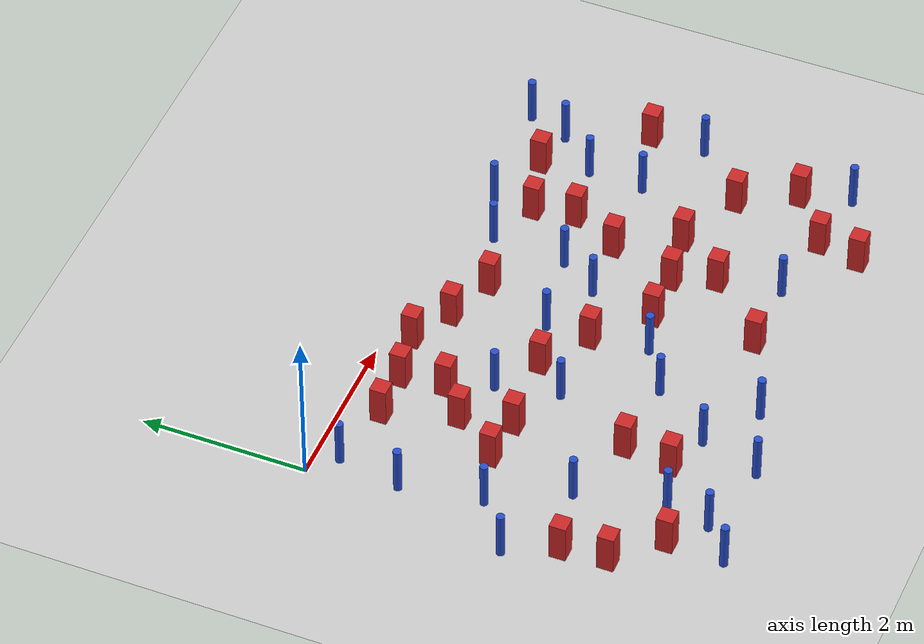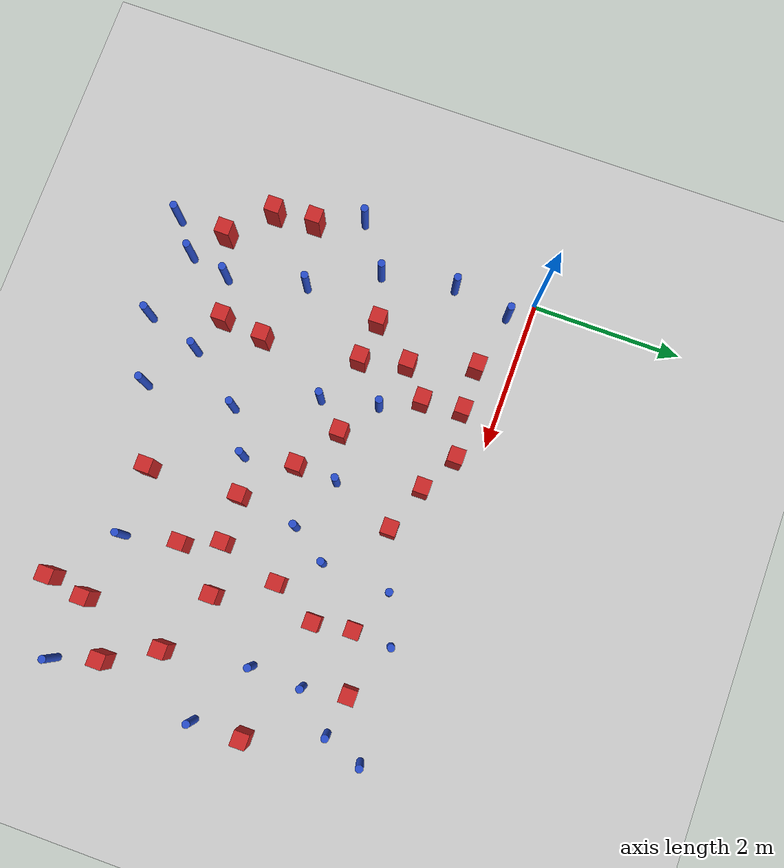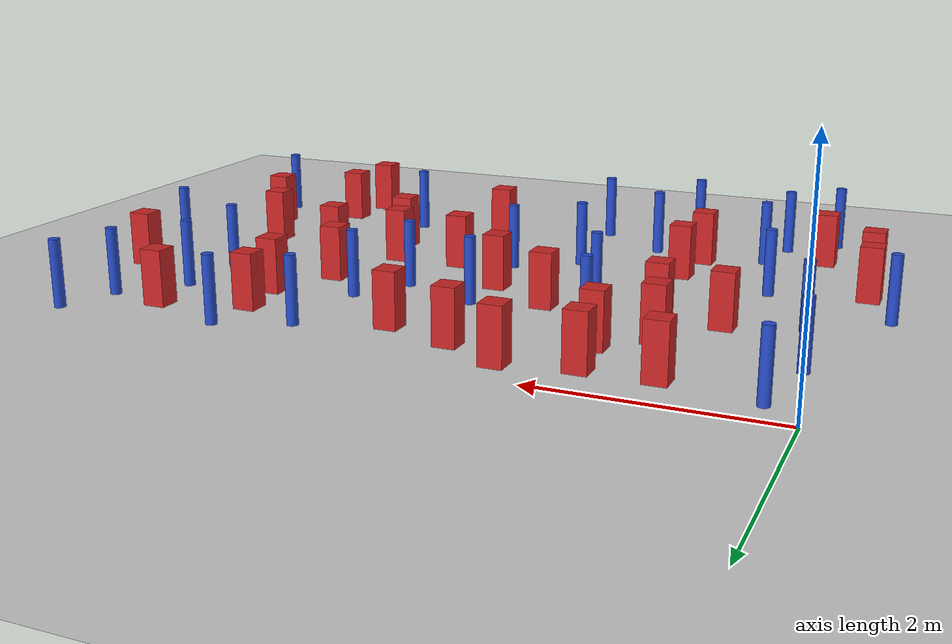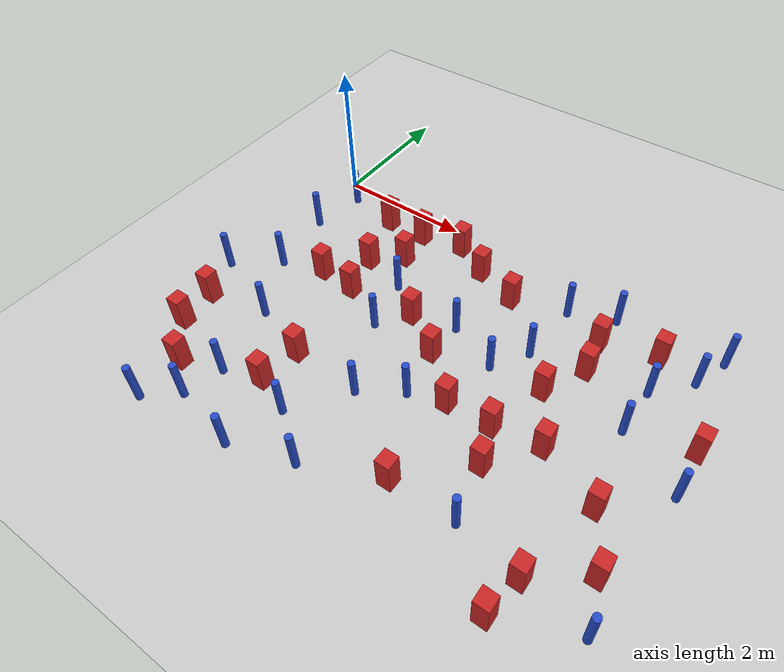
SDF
<sdf version="1.6">
 <world name="default">
  <model name="ground_plane">
   <static>1</static>
   <link name="link">
    <collision name="collision">
     <geometry><plane><normal>0 0 1</normal><size>100 100</size></plane></geometry>
     <surface><friction><ode><mu>100</mu><mu2>50</mu2></ode></friction></surface>
    </collision>
    <visual name="visual">
     <cast_shadows>0</cast_shadows>
     <geometry><plane><normal>0 0 1</normal><size>100 100</size></plane></geometry>
     <material>
      <ambient>1.0 1.0 1.0 1.0</ambient>
      <diffuse>0.8 0.8 0.8 1.0</diffuse>
      <specular>0.01 0.01 0.01 1.000000</specular>
     </material>
    </visual>
   </link>
  </model>
  <model name="pole_obstacle6">
   <static>true</static>
   <pose>1.02716749016 -3.94141374447 2.88873142074e-08 -9.905366898e-09 4.6021994899e-07 -1.20965994959e-07</pose>
   <link name="link">
    <pose>0 0 0.3 0 -0 0</pose>
    <inertial>
     <mass>1</mass>
     <inertia><ixx>0.145833</ixx><ixy>0</ixy><ixz>0</ixz><iyy>0.145833</iyy><iyz>0</iyz><izz>0.125</izz></inertia>
    </inertial>
    <collision name="collision">
     <geometry><cylinder><radius>0.05</radius><length>.6</length></cylinder></geometry>
    </collision>
    <visual name="visual">
     <geometry><cylinder><radius>0.05</radius><length>.6</length></cylinder></geometry>
     <material>
      <script><name>Gazebo/Blue</name><uri>file://media/materials/scripts/gazebo.material</uri></script>
     </material>
    </visual>
   </link>
  </model>
  <model name="square_post_obstacle7">
   <static>true</static>
   <pose>-0.0057804838044 -3.64052137641 8.22691968438e-08 7.2212513382e-06 -7.54495500217e-07 2.29674213826e-05</pose>
   <link name="link">
    <pose>0 0 0.25 0 -0 0</pose>
    <inertial>
     <mass>100</mass>
     <inertia>
      <ixx>0.166667</ixx>
      <ixy>0</ixy>
      <ixz>0</ixz>
      <iyy>0.166667</iyy>
      <iyz>0</iyz>
      <izz>0.166667</izz>
     </inertia>
    </inertial>
    <collision name="collision"><geometry><box><size>.2 .2 .5</size></box></geometry></collision>
    <visual name="visual">
     <geometry><box><size>.2 .2 .5</size></box></geometry>
     <material>
      <script><name>Gazebo/Red</name><uri>file://media/materials/scripts/gazebo.material</uri></script>
     </material>
    </visual>
   </link>
  </model>
  <model name="pole_obstacle18">
   <static>true</static>
   <pose>2.1458265055 -2.21912154027 2.88873142074e-08 -9.90536690232e-09 4.6021994898e-07 -1.20965994968e-07</pose>
   <link name="link">
    <pose>0 0 0.3 0 -0 0</pose>
    <inertial>
     <mass>1</mass>
     <inertia><ixx>0.145833</ixx><ixy>0</ixy><ixz>0</ixz><iyy>0.145833</iyy><iyz>0</iyz><izz>0.125</izz></inertia>
    </inertial>
    <collision name="collision">
     <geometry><cylinder><radius>0.05</radius><length>.6</length></cylinder></geometry>
    </collision>
    <visual name="visual">
     <geometry><cylinder><radius>0.05</radius><length>.6</length></cylinder></geometry>
     <material>
      <script><name>Gazebo/Blue</name><uri>file://media/materials/scripts/gazebo.material</uri></script>
     </material>
    </visual>
   </link>
  </model>
  <model name="square_post_obstacle15">
   <static>true</static>
   <pose>6.16638495701 -3.64058600753 8.22691968438e-08 7.2212513382e-06 -7.54495500217e-07 2.29674213826e-05</pose>
   <link name="link">
    <pose>0 0 0.25 0 -0 0</pose>
    <inertial>
     <mass>100</mass>
     <inertia>
      <ixx>0.166667</ixx>
      <ixy>0</ixy>
      <ixz>0</ixz>
      <iyy>0.166667</iyy>
      <iyz>0</iyz>
      <izz>0.166667</izz>
     </inertia>
    </inertial>
    <collision name="collision"><geometry><box><size>.2 .2 .5</size></box></geometry></collision>
    <visual name="visual">
     <geometry><box><size>.2 .2 .5</size></box></geometry>
     <material>
      <script><name>Gazebo/Red</name><uri>file://media/materials/scripts/gazebo.material</uri></script>
     </material>
    </visual>
   </link>
  </model>
  <model name="pole_obstacle21">
   <static>true</static>
   <pose>-0.311087586102 -2.49028913784 2.88873142074e-08 -9.90536689663e-09 4.60219948993e-07 -1.20965994959e-07</pose>
   <link name="link">
    <pose>0 0 0.3 0 -0 0</pose>
    <inertial>
     <mass>1</mass>
     <inertia><ixx>0.145833</ixx><ixy>0</ixy><ixz>0</ixz><iyy>0.145833</iyy><iyz>0</iyz><izz>0.125</izz></inertia>
    </inertial>
    <collision name="collision">
     <geometry><cylinder><radius>0.05</radius><length>.6</length></cylinder></geometry>
    </collision>
    <visual name="visual">
     <geometry><cylinder><radius>0.05</radius><length>.6</length></cylinder></geometry>
     <material>
      <script><name>Gazebo/Blue</name><uri>file://media/materials/scripts/gazebo.material</uri></script>
     </material>
    </visual>
   </link>
  </model>
  <model name="square_post_obstacle18">
   <static>true</static>
   <pose>2.48463160114 -1.83322544054 8.22691968438e-08 7.2212513382e-06 -7.54495500217e-07 2.29674213826e-05</pose>
   <link name="link">
    <pose>0 0 0.25 0 -0 0</pose>
    <inertial>
     <mass>100</mass>
     <inertia>
      <ixx>0.166667</ixx>
      <ixy>0</ixy>
      <ixz>0</ixz>
      <iyy>0.166667</iyy>
      <iyz>0</iyz>
      <izz>0.166667</izz>
     </inertia>
    </inertial>
    <collision name="collision"><geometry><box><size>.2 .2 .5</size></box></geometry></collision>
    <visual name="visual">
     <geometry><box><size>.2 .2 .5</size></box></geometry>
     <material>
      <script><name>Gazebo/Red</name><uri>file://media/materials/scripts/gazebo.material</uri></script>
     </material>
    </visual>
   </link>
  </model>
  <model name="pole_obstacle25">
   <static>true</static>
   <pose>1.84519494686 -4.69415140168 2.88873142074e-08 -9.90536689852e-09 4.60219948989e-07 -1.2096599496e-07</pose>
   <link name="link">
    <pose>0 0 0.3 0 -0 0</pose>
    <inertial>
     <mass>1</mass>
     <inertia><ixx>0.145833</ixx><ixy>0</ixy><ixz>0</ixz><iyy>0.145833</iyy><iyz>0</iyz><izz>0.125</izz></inertia>
    </inertial>
    <collision name="collision">
     <geometry><cylinder><radius>0.05</radius><length>.6</length></cylinder></geometry>
    </collision>
    <visual name="visual">
     <geometry><cylinder><radius>0.05</radius><length>.6</length></cylinder></geometry>
     <material>
      <script><name>Gazebo/Blue</name><uri>file://media/materials/scripts/gazebo.material</uri></script>
     </material>
    </visual>
   </link>
  </model>
  <model name="pole_obstacle29">
   <static>true</static>
   <pose>4.82160324597 -0.308632297816 2.88873142074e-08 -9.90536689981e-09 4.60219948986e-07 -1.20965994962e-07</pose>
   <link name="link">
    <pose>0 0 0.3 0 -0 0</pose>
    <inertial>
     <mass>1</mass>
     <inertia><ixx>0.145833</ixx><ixy>0</ixy><ixz>0</ixz><iyy>0.145833</iyy><iyz>0</iyz><izz>0.125</izz></inertia>
    </inertial>
    <collision name="collision">
     <geometry><cylinder><radius>0.05</radius><length>.6</length></cylinder></geometry>
    </collision>
    <visual name="visual">
     <geometry><cylinder><radius>0.05</radius><length>.6</length></cylinder></geometry>
     <material>
      <script><name>Gazebo/Blue</name><uri>file://media/materials/scripts/gazebo.material</uri></script>
     </material>
    </visual>
   </link>
  </model>
  <model name="square_post_obstacle25">
   <static>true</static>
   <pose>1.64201008194 -3.1992250627 8.22691968438e-08 7.2212513382e-06 -7.54495500217e-07 2.29674213826e-05</pose>
   <link name="link">
    <pose>0 0 0.25 0 -0 0</pose>
    <inertial>
     <mass>100</mass>
     <inertia>
      <ixx>0.166667</ixx>
      <ixy>0</ixy>
      <ixz>0</ixz>
      <iyy>0.166667</iyy>
      <iyz>0</iyz>
      <izz>0.166667</izz>
     </inertia>
    </inertial>
    <collision name="collision"><geometry><box><size>.2 .2 .5</size></box></geometry></collision>
    <visual name="visual">
     <geometry><box><size>.2 .2 .5</size></box></geometry>
     <material>
      <script><name>Gazebo/Red</name><uri>file://media/materials/scripts/gazebo.material</uri></script>
     </material>
    </visual>
   </link>
  </model>
  <model name="pole_obstacle37">
   <static>true</static>
   <pose>0.897569217199 -4.48015806461 2.88873142074e-08 -9.90536689661e-09 4.60219948993e-07 -1.20965994957e-07</pose>
   <link name="link">
    <pose>0 0 0.3 0 -0 0</pose>
    <inertial>
     <mass>1</mass>
     <inertia><ixx>0.145833</ixx><ixy>0</ixy><ixz>0</ixz><iyy>0.145833</iyy><iyz>0</iyz><izz>0.125</izz></inertia>
    </inertial>
    <collision name="collision">
     <geometry><cylinder><radius>0.05</radius><length>.6</length></cylinder></geometry>
    </collision>
    <visual name="visual">
     <geometry><cylinder><radius>0.05</radius><length>.6</length></cylinder></geometry>
     <material>
      <script><name>Gazebo/Blue</name><uri>file://media/materials/scripts/gazebo.material</uri></script>
     </material>
    </visual>
   </link>
  </model>
  <model name="pole_obstacle41">
   <static>true</static>
   <pose>0.782622849794 -2.91229569489 2.88873142074e-08 -9.90536689636e-09 4.60219948994e-07 -1.20965994958e-07</pose>
   <link name="link">
    <pose>0 0 0.3 0 -0 0</pose>
    <inertial>
     <mass>1</mass>
     <inertia><ixx>0.145833</ixx><ixy>0</ixy><ixz>0</ixz><iyy>0.145833</iyy><iyz>0</iyz><izz>0.125</izz></inertia>
    </inertial>
    <collision name="collision">
     <geometry><cylinder><radius>0.05</radius><length>.6</length></cylinder></geometry>
    </collision>
    <visual name="visual">
     <geometry><cylinder><radius>0.05</radius><length>.6</length></cylinder></geometry>
     <material>
      <script><name>Gazebo/Blue</name><uri>file://media/materials/scripts/gazebo.material</uri></script>
     </material>
    </visual>
   </link>
  </model>
  <model name="pole_obstacle42">
   <static>true</static>
   <pose>0.153689035778 -1.06275869575 2.88873142074e-08 -9.90536689569e-09 4.60219948996e-07 -1.20965994956e-07</pose>
   <link name="link">
    <pose>0 0 0.3 0 -0 0</pose>
    <inertial>
     <mass>1</mass>
     <inertia><ixx>0.145833</ixx><ixy>0</ixy><ixz>0</ixz><iyy>0.145833</iyy><iyz>0</iyz><izz>0.125</izz></inertia>
    </inertial>
    <collision name="collision">
     <geometry><cylinder><radius>0.05</radius><length>.6</length></cylinder></geometry>
    </collision>
    <visual name="visual">
     <geometry><cylinder><radius>0.05</radius><length>.6</length></cylinder></geometry>
     <material>
      <script><name>Gazebo/Blue</name><uri>file://media/materials/scripts/gazebo.material</uri></script>
     </material>
    </visual>
   </link>
  </model>
  <model name="square_post_obstacle35">
   <static>true</static>
   <pose>3.43985547992 -0.816045588412 8.22691968438e-08 7.2212513382e-06 -7.54495500217e-07 2.29674213826e-05</pose>
   <link name="link">
    <pose>0 0 0.25 0 -0 0</pose>
    <inertial>
     <mass>100</mass>
     <inertia>
      <ixx>0.166667</ixx>
      <ixy>0</ixy>
      <ixz>0</ixz>
      <iyy>0.166667</iyy>
      <iyz>0</iyz>
      <izz>0.166667</izz>
     </inertia>
    </inertial>
    <collision name="collision"><geometry><box><size>.2 .2 .5</size></box></geometry></collision>
    <visual name="visual">
     <geometry><box><size>.2 .2 .5</size></box></geometry>
     <material>
      <script><name>Gazebo/Red</name><uri>file://media/materials/scripts/gazebo.material</uri></script>
     </material>
    </visual>
   </link>
  </model>
  <model name="square_post_obstacle39">
   <static>true</static>
   <pose>3.72615181949 -3.97784280916 8.22691968438e-08 7.2212513382e-06 -7.54495500217e-07 2.29674213826e-05</pose>
   <link name="link">
    <pose>0 0 0.25 0 -0 0</pose>
    <inertial>
     <mass>100</mass>
     <inertia>
      <ixx>0.166667</ixx>
      <ixy>0</ixy>
      <ixz>0</ixz>
      <iyy>0.166667</iyy>
      <iyz>0</iyz>
      <izz>0.166667</izz>
     </inertia>
    </inertial>
    <collision name="collision"><geometry><box><size>.2 .2 .5</size></box></geometry></collision>
    <visual name="visual">
     <geometry><box><size>.2 .2 .5</size></box></geometry>
     <material>
      <script><name>Gazebo/Red</name><uri>file://media/materials/scripts/gazebo.material</uri></script>
     </material>
    </visual>
   </link>
  </model>
  <model name="pole_obstacle49">
   <static>true</static>
   <pose>0.291614957395 -0.297635269655 2.88873142074e-08 -9.90536689987e-09 4.60219948986e-07 -1.20965994962e-07</pose>
   <link name="link">
    <pose>0 0 0.3 0 -0 0</pose>
    <inertial>
     <mass>1</mass>
     <inertia><ixx>0.145833</ixx><ixy>0</ixy><ixz>0</ixz><iyy>0.145833</iyy><iyz>0</iyz><izz>0.125</izz></inertia>
    </inertial>
    <collision name="collision">
     <geometry><cylinder><radius>0.05</radius><length>.6</length></cylinder></geometry>
    </collision>
    <visual name="visual">
     <geometry><cylinder><radius>0.05</radius><length>.6</length></cylinder></geometry>
     <material>
      <script><name>Gazebo/Blue</name><uri>file://media/materials/scripts/gazebo.material</uri></script>
     </material>
    </visual>
   </link>
  </model>
  <model name="pole_obstacle53">
   <static>true</static>
   <pose>5.62609743832 -1.8604816719 2.88873142074e-08 -9.90536689445e-09 4.60219948999e-07 -1.20965994956e-07</pose>
   <link name="link">
    <pose>0 0 0.3 0 -0 0</pose>
    <inertial>
     <mass>1</mass>
     <inertia><ixx>0.145833</ixx><ixy>0</ixy><ixz>0</ixz><iyy>0.145833</iyy><iyz>0</iyz><izz>0.125</izz></inertia>
    </inertial>
    <collision name="collision">
     <geometry><cylinder><radius>0.05</radius><length>.6</length></cylinder></geometry>
    </collision>
    <visual name="visual">
     <geometry><cylinder><radius>0.05</radius><length>.6</length></cylinder></geometry>
     <material>
      <script><name>Gazebo/Blue</name><uri>file://media/materials/scripts/gazebo.material</uri></script>
     </material>
    </visual>
   </link>
  </model>
  <model name="pole_obstacle54">
   <static>true</static>
   <pose>5.65227359529 -1.18035621923 2.88873142074e-08 -9.90536689445e-09 4.60219948999e-07 -1.20965994956e-07</pose>
   <link name="link">
    <pose>0 0 0.3 0 -0 0</pose>
    <inertial>
     <mass>1</mass>
     <inertia><ixx>0.145833</ixx><ixy>0</ixy><ixz>0</ixz><iyy>0.145833</iyy><iyz>0</iyz><izz>0.125</izz></inertia>
    </inertial>
    <collision name="collision">
     <geometry><cylinder><radius>0.05</radius><length>.6</length></cylinder></geometry>
    </collision>
    <visual name="visual">
     <geometry><cylinder><radius>0.05</radius><length>.6</length></cylinder></geometry>
     <material>
      <script><name>Gazebo/Blue</name><uri>file://media/materials/scripts/gazebo.material</uri></script>
     </material>
    </visual>
   </link>
  </model>
  <model name="square_post_obstacle45">
   <static>true</static>
   <pose>4.48881305456 -3.23550049354 8.22691968438e-08 7.2212513382e-06 -7.54495500217e-07 2.29674213826e-05</pose>
   <link name="link">
    <pose>0 0 0.25 0 -0 0</pose>
    <inertial>
     <mass>100</mass>
     <inertia>
      <ixx>0.166667</ixx>
      <ixy>0</ixy>
      <ixz>0</ixz>
      <iyy>0.166667</iyy>
      <iyz>0</iyz>
      <izz>0.166667</izz>
     </inertia>
    </inertial>
    <collision name="collision"><geometry><box><size>.2 .2 .5</size></box></geometry></collision>
    <visual name="visual">
     <geometry><box><size>.2 .2 .5</size></box></geometry>
     <material>
      <script><name>Gazebo/Red</name><uri>file://media/materials/scripts/gazebo.material</uri></script>
     </material>
    </visual>
   </link>
  </model>
  <model name="square_post_obstacle46">
   <static>true</static>
   <pose>1.57374405064 -3.7740169962 8.22691968438e-08 7.2212513382e-06 -7.54495500217e-07 2.29674213826e-05</pose>
   <link name="link">
    <pose>0 0 0.25 0 -0 0</pose>
    <inertial>
     <mass>100</mass>
     <inertia>
      <ixx>0.166667</ixx>
      <ixy>0</ixy>
      <ixz>0</ixz>
      <iyy>0.166667</iyy>
      <iyz>0</iyz>
      <izz>0.166667</izz>
     </inertia>
    </inertial>
    <collision name="collision"><geometry><box><size>.2 .2 .5</size></box></geometry></collision>
    <visual name="visual">
     <geometry><box><size>.2 .2 .5</size></box></geometry>
     <material>
      <script><name>Gazebo/Red</name><uri>file://media/materials/scripts/gazebo.material</uri></script>
     </material>
    </visual>
   </link>
  </model>
  <model name="pole_obstacle72">
   <static>true</static>
   <pose>6.28156783449 -0.192312432924 2.88873142074e-08 -9.90536689378e-09 4.60219949e-07 -1.20965994955e-07</pose>
   <link name="link">
    <pose>0 0 0.3 0 -0 0</pose>
    <inertial>
     <mass>1</mass>
     <inertia><ixx>0.145833</ixx><ixy>0</ixy><ixz>0</ixz><iyy>0.145833</iyy><iyz>0</iyz><izz>0.125</izz></inertia>
    </inertial>
    <collision name="collision">
     <geometry><cylinder><radius>0.05</radius><length>.6</length></cylinder></geometry>
    </collision>
    <visual name="visual">
     <geometry><cylinder><radius>0.05</radius><length>.6</length></cylinder></geometry>
     <material>
      <script><name>Gazebo/Blue</name><uri>file://media/materials/scripts/gazebo.material</uri></script>
     </material>
    </visual>
   </link>
  </model>
  <model name="square_post_obstacle70">
   <static>true</static>
   <pose>1.0900174427 -0.460430602931 8.22691968438e-08 7.2212513382e-06 -7.54495500217e-07 2.29674213826e-05</pose>
   <link name="link">
    <pose>0 0 0.25 0 -0 0</pose>
    <inertial>
     <mass>100</mass>
     <inertia>
      <ixx>0.166667</ixx>
      <ixy>0</ixy>
      <ixz>0</ixz>
      <iyy>0.166667</iyy>
      <iyz>0</iyz>
      <izz>0.166667</izz>
     </inertia>
    </inertial>
    <collision name="collision"><geometry><box><size>.2 .2 .5</size></box></geometry></collision>
    <visual name="visual">
     <geometry><box><size>.2 .2 .5</size></box></geometry>
     <material>
      <script><name>Gazebo/Red</name><uri>file://media/materials/scripts/gazebo.material</uri></script>
     </material>
    </visual>
   </link>
  </model>
  <model name="square_post_obstacle75">
   <static>true</static>
   <pose>4.78665982903 -0.819396794018 8.22691968438e-08 7.2212513382e-06 -7.54495500217e-07 2.29674213826e-05</pose>
   <link name="link">
    <pose>0 0 0.25 0 -0 0</pose>
    <inertial>
     <mass>100</mass>
     <inertia>
      <ixx>0.166667</ixx>
      <ixy>0</ixy>
      <ixz>0</ixz>
      <iyy>0.166667</iyy>
      <iyz>0</iyz>
      <izz>0.166667</izz>
     </inertia>
    </inertial>
    <collision name="collision"><geometry><box><size>.2 .2 .5</size></box></geometry></collision>
    <visual name="visual">
     <geometry><box><size>.2 .2 .5</size></box></geometry>
     <material>
      <script><name>Gazebo/Red</name><uri>file://media/materials/scripts/gazebo.material</uri></script>
     </material>
    </visual>
   </link>
  </model>
  <model name="square_post_obstacle78">
   <static>true</static>
   <pose>5.51664707683 -4.11467315129 8.22691968438e-08 7.2212513382e-06 -7.54495500217e-07 2.29674213826e-05</pose>
   <link name="link">
    <pose>0 0 0.25 0 -0 0</pose>
    <inertial>
     <mass>100</mass>
     <inertia>
      <ixx>0.166667</ixx>
      <ixy>0</ixy>
      <ixz>0</ixz>
      <iyy>0.166667</iyy>
      <iyz>0</iyz>
      <izz>0.166667</izz>
     </inertia>
    </inertial>
    <collision name="collision"><geometry><box><size>.2 .2 .5</size></box></geometry></collision>
    <visual name="visual">
     <geometry><box><size>.2 .2 .5</size></box></geometry>
     <material>
      <script><name>Gazebo/Red</name><uri>file://media/materials/scripts/gazebo.material</uri></script>
     </material>
    </visual>
   </link>
  </model>
  <model name="square_post_obstacle87">
   <static>true</static>
   <pose>1.74319357645 -0.977572570384 8.22691968438e-08 7.2212513382e-06 -7.54495500217e-07 2.29674213826e-05</pose>
   <link name="link">
    <pose>0 0 0.25 0 -0 0</pose>
    <inertial>
     <mass>100</mass>
     <inertia>
      <ixx>0.166667</ixx>
      <ixy>0</ixy>
      <ixz>0</ixz>
      <iyy>0.166667</iyy>
      <iyz>0</iyz>
      <izz>0.166667</izz>
     </inertia>
    </inertial>
    <collision name="collision"><geometry><box><size>.2 .2 .5</size></box></geometry></collision>
    <visual name="visual">
     <geometry><box><size>.2 .2 .5</size></box></geometry>
     <material>
      <script><name>Gazebo/Red</name><uri>file://media/materials/scripts/gazebo.material</uri></script>
     </material>
    </visual>
   </link>
  </model>
  <model name="pole_obstacle100">
   <static>true</static>
   <pose>6.49144829495 -2.31730553002 2.88873142074e-08 -9.90536690245e-09 4.6021994898e-07 -1.20965994966e-07</pose>
   <link name="link">
    <pose>0 0 0.3 0 -0 0</pose>
    <inertial>
     <mass>1</mass>
     <inertia><ixx>0.145833</ixx><ixy>0</ixy><ixz>0</ixz><iyy>0.145833</iyy><iyz>0</iyz><izz>0.125</izz></inertia>
    </inertial>
    <collision name="collision">
     <geometry><cylinder><radius>0.05</radius><length>.6</length></cylinder></geometry>
    </collision>
    <visual name="visual">
     <geometry><cylinder><radius>0.05</radius><length>.6</length></cylinder></geometry>
     <material>
      <script><name>Gazebo/Blue</name><uri>file://media/materials/scripts/gazebo.material</uri></script>
     </material>
    </visual>
   </link>
  </model>
  <model name="square_post_obstacle92">
   <static>true</static>
   <pose>4.30711983269 -2.73348006286 8.22691968438e-08 7.2212513382e-06 -7.54495500217e-07 2.29674213826e-05</pose>
   <link name="link">
    <pose>0 0 0.25 0 -0 0</pose>
    <inertial>
     <mass>100</mass>
     <inertia>
      <ixx>0.166667</ixx>
      <ixy>0</ixy>
      <ixz>0</ixz>
      <iyy>0.166667</iyy>
      <iyz>0</iyz>
      <izz>0.166667</izz>
     </inertia>
    </inertial>
    <collision name="collision"><geometry><box><size>.2 .2 .5</size></box></geometry></collision>
    <visual name="visual">
     <geometry><box><size>.2 .2 .5</size></box></geometry>
     <material>
      <script><name>Gazebo/Red</name><uri>file://media/materials/scripts/gazebo.material</uri></script>
     </material>
    </visual>
   </link>
  </model>
  <model name="pole_obstacle101">
   <static>true</static>
   <pose>4.63980084065 -3.97178573688 2.88873142074e-08 -9.90536690067e-09 4.60219948984e-07 -1.20965994963e-07</pose>
   <link name="link">
    <pose>0 0 0.3 0 -0 0</pose>
    <inertial>
     <mass>1</mass>
     <inertia><ixx>0.145833</ixx><ixy>0</ixy><ixz>0</ixz><iyy>0.145833</iyy><iyz>0</iyz><izz>0.125</izz></inertia>
    </inertial>
    <collision name="collision">
     <geometry><cylinder><radius>0.05</radius><length>.6</length></cylinder></geometry>
    </collision>
    <visual name="visual">
     <geometry><cylinder><radius>0.05</radius><length>.6</length></cylinder></geometry>
     <material>
      <script><name>Gazebo/Blue</name><uri>file://media/materials/scripts/gazebo.material</uri></script>
     </material>
    </visual>
   </link>
  </model>
  <model name="pole_obstacle110">
   <static>true</static>
   <pose>2.08003524711 -3.96462523113 2.88873142074e-08 -9.90536690455e-09 4.60219948975e-07 -1.20965994972e-07</pose>
   <link name="link">
    <pose>0 0 0.3 0 -0 0</pose>
    <inertial>
     <mass>1</mass>
     <inertia><ixx>0.145833</ixx><ixy>0</ixy><ixz>0</ixz><iyy>0.145833</iyy><iyz>0</iyz><izz>0.125</izz></inertia>
    </inertial>
    <collision name="collision">
     <geometry><cylinder><radius>0.05</radius><length>.6</length></cylinder></geometry>
    </collision>
    <visual name="visual">
     <geometry><cylinder><radius>0.05</radius><length>.6</length></cylinder></geometry>
     <material>
      <script><name>Gazebo/Blue</name><uri>file://media/materials/scripts/gazebo.material</uri></script>
     </material>
    </visual>
   </link>
  </model>
  <model name="square_post_obstacle107">
   <static>true</static>
   <pose>4.96552659988 -2.62943548125 8.22691968438e-08 7.2212513382e-06 -7.54495500217e-07 2.29674213826e-05</pose>
   <link name="link">
    <pose>0 0 0.25 0 -0 0</pose>
    <inertial>
     <mass>100</mass>
     <inertia>
      <ixx>0.166667</ixx>
      <ixy>0</ixy>
      <ixz>0</ixz>
      <iyy>0.166667</iyy>
      <iyz>0</iyz>
      <izz>0.166667</izz>
     </inertia>
    </inertial>
    <collision name="collision"><geometry><box><size>.2 .2 .5</size></box></geometry></collision>
    <visual name="visual">
     <geometry><box><size>.2 .2 .5</size></box></geometry>
     <material>
      <script><name>Gazebo/Red</name><uri>file://media/materials/scripts/gazebo.material</uri></script>
     </material>
    </visual>
   </link>
  </model>
  <model name="square_post_obstacle108">
   <static>true</static>
   <pose>5.80158513676 -2.97636246414 8.22691968438e-08 7.2212513382e-06 -7.54495500217e-07 2.29674213826e-05</pose>
   <link name="link">
    <pose>0 0 0.25 0 -0 0</pose>
    <inertial>
     <mass>100</mass>
     <inertia>
      <ixx>0.166667</ixx>
      <ixy>0</ixy>
      <ixz>0</ixz>
      <iyy>0.166667</iyy>
      <iyz>0</iyz>
      <izz>0.166667</izz>
     </inertia>
    </inertial>
    <collision name="collision"><geometry><box><size>.2 .2 .5</size></box></geometry></collision>
    <visual name="visual">
     <geometry><box><size>.2 .2 .5</size></box></geometry>
     <material>
      <script><name>Gazebo/Red</name><uri>file://media/materials/scripts/gazebo.material</uri></script>
     </material>
    </visual>
   </link>
  </model>
  <model name="square_post_obstacle109">
   <static>true</static>
   <pose>0.939954980789 -1.85777702899 8.22691968438e-08 7.2212513382e-06 -7.54495500217e-07 2.29674213826e-05</pose>
   <link name="link">
    <pose>0 0 0.25 0 -0 0</pose>
    <inertial>
     <mass>100</mass>
     <inertia>
      <ixx>0.166667</ixx>
      <ixy>0</ixy>
      <ixz>0</ixz>
      <iyy>0.166667</iyy>
      <iyz>0</iyz>
      <izz>0.166667</izz>
     </inertia>
    </inertial>
    <collision name="collision"><geometry><box><size>.2 .2 .5</size></box></geometry></collision>
    <visual name="visual">
     <geometry><box><size>.2 .2 .5</size></box></geometry>
     <material>
      <script><name>Gazebo/Red</name><uri>file://media/materials/scripts/gazebo.material</uri></script>
     </material>
    </visual>
   </link>
  </model>
  <model name="pole_obstacle114">
   <static>true</static>
   <pose>3.18426060975 -2.89208213167 2.88873142074e-08 -9.90536690232e-09 4.6021994898e-07 -1.20965994968e-07</pose>
   <link name="link">
    <pose>0 0 0.3 0 -0 0</pose>
    <inertial>
     <mass>1</mass>
     <inertia><ixx>0.145833</ixx><ixy>0</ixy><ixz>0</ixz><iyy>0.145833</iyy><iyz>0</iyz><izz>0.125</izz></inertia>
    </inertial>
    <collision name="collision">
     <geometry><cylinder><radius>0.05</radius><length>.6</length></cylinder></geometry>
    </collision>
    <visual name="visual">
     <geometry><cylinder><radius>0.05</radius><length>.6</length></cylinder></geometry>
     <material>
      <script><name>Gazebo/Blue</name><uri>file://media/materials/scripts/gazebo.material</uri></script>
     </material>
    </visual>
   </link>
  </model>
  <model name="square_post_obstacle111">
   <static>true</static>
   <pose>0.48721109979 -4.14212991658 8.22691968438e-08 7.2212513382e-06 -7.54495500217e-07 2.29674213826e-05</pose>
   <link name="link">
    <pose>0 0 0.25 0 -0 0</pose>
    <inertial>
     <mass>100</mass>
     <inertia>
      <ixx>0.166667</ixx>
      <ixy>0</ixy>
      <ixz>0</ixz>
      <iyy>0.166667</iyy>
      <iyz>0</iyz>
      <izz>0.166667</izz>
     </inertia>
    </inertial>
    <collision name="collision"><geometry><box><size>.2 .2 .5</size></box></geometry></collision>
    <visual name="visual">
     <geometry><box><size>.2 .2 .5</size></box></geometry>
     <material>
      <script><name>Gazebo/Red</name><uri>file://media/materials/scripts/gazebo.material</uri></script>
     </material>
    </visual>
   </link>
  </model>
  <model name="square_post_obstacle112">
   <static>true</static>
   <pose>1.35096492796 -1.30918589639 8.22691968438e-08 7.2212513382e-06 -7.54495500217e-07 2.29674213826e-05</pose>
   <link name="link">
    <pose>0 0 0.25 0 -0 0</pose>
    <inertial>
     <mass>100</mass>
     <inertia>
      <ixx>0.166667</ixx>
      <ixy>0</ixy>
      <ixz>0</ixz>
      <iyy>0.166667</iyy>
      <iyz>0</iyz>
      <izz>0.166667</izz>
     </inertia>
    </inertial>
    <collision name="collision"><geometry><box><size>.2 .2 .5</size></box></geometry></collision>
    <visual name="visual">
     <geometry><box><size>.2 .2 .5</size></box></geometry>
     <material>
      <script><name>Gazebo/Red</name><uri>file://media/materials/scripts/gazebo.material</uri></script>
     </material>
    </visual>
   </link>
  </model>
  <model name="pole_obstacle117">
   <static>true</static>
   <pose>4.12829411631 -1.47044738075 2.88873142074e-08 -9.90536689445e-09 4.60219948999e-07 -1.20965994956e-07</pose>
   <link name="link">
    <pose>0 0 0.3 0 -0 0</pose>
    <inertial>
     <mass>1</mass>
     <inertia><ixx>0.145833</ixx><ixy>0</ixy><ixz>0</ixz><iyy>0.145833</iyy><iyz>0</iyz><izz>0.125</izz></inertia>
    </inertial>
    <collision name="collision">
     <geometry><cylinder><radius>0.05</radius><length>.6</length></cylinder></geometry>
    </collision>
    <visual name="visual">
     <geometry><cylinder><radius>0.05</radius><length>.6</length></cylinder></geometry>
     <material>
      <script><name>Gazebo/Blue</name><uri>file://media/materials/scripts/gazebo.material</uri></script>
     </material>
    </visual>
   </link>
  </model>
  <model name="square_post_obstacle122">
   <static>true</static>
   <pose>2.31136959014 -0.327434362764 8.22691968438e-08 7.2212513382e-06 -7.54495500217e-07 2.29674213826e-05</pose>
   <link name="link">
    <pose>0 0 0.25 0 -0 0</pose>
    <inertial>
     <mass>100</mass>
     <inertia>
      <ixx>0.166667</ixx>
      <ixy>0</ixy>
      <ixz>0</ixz>
      <iyy>0.166667</iyy>
      <iyz>0</iyz>
      <izz>0.166667</izz>
     </inertia>
    </inertial>
    <collision name="collision"><geometry><box><size>.2 .2 .5</size></box></geometry></collision>
    <visual name="visual">
     <geometry><box><size>.2 .2 .5</size></box></geometry>
     <material>
      <script><name>Gazebo/Red</name><uri>file://media/materials/scripts/gazebo.material</uri></script>
     </material>
    </visual>
   </link>
  </model>
  <model name="square_post_obstacle124">
   <static>true</static>
   <pose>3.67869563572 -2.74945080912 8.22691968438e-08 7.2212513382e-06 -7.54495500217e-07 2.29674213826e-05</pose>
   <link name="link">
    <pose>0 0 0.25 0 -0 0</pose>
    <inertial>
     <mass>100</mass>
     <inertia>
      <ixx>0.166667</ixx>
      <ixy>0</ixy>
      <ixz>0</ixz>
      <iyy>0.166667</iyy>
      <iyz>0</iyz>
      <izz>0.166667</izz>
     </inertia>
    </inertial>
    <collision name="collision"><geometry><box><size>.2 .2 .5</size></box></geometry></collision>
    <visual name="visual">
     <geometry><box><size>.2 .2 .5</size></box></geometry>
     <material>
      <script><name>Gazebo/Red</name><uri>file://media/materials/scripts/gazebo.material</uri></script>
     </material>
    </visual>
   </link>
  </model>
  <model name="pole_obstacle139">
   <static>true</static>
   <pose>6.35997605892 -4.22745499693 2.88873142074e-08 -9.90536690842e-09 4.60219948965e-07 -1.20965994976e-07</pose>
   <link name="link">
    <pose>0 0 0.3 0 -0 0</pose>
    <inertial>
     <mass>1</mass>
     <inertia><ixx>0.145833</ixx><ixy>0</ixy><ixz>0</ixz><iyy>0.145833</iyy><iyz>0</iyz><izz>0.125</izz></inertia>
    </inertial>
    <collision name="collision">
     <geometry><cylinder><radius>0.05</radius><length>.6</length></cylinder></geometry>
    </collision>
    <visual name="visual">
     <geometry><cylinder><radius>0.05</radius><length>.6</length></cylinder></geometry>
     <material>
      <script><name>Gazebo/Blue</name><uri>file://media/materials/scripts/gazebo.material</uri></script>
     </material>
    </visual>
   </link>
  </model>
  <model name="pole_obstacle141">
   <static>true</static>
   <pose>2.62932776361 -3.23721806688 2.88873142074e-08 -9.90536690232e-09 4.6021994898e-07 -1.20965994968e-07</pose>
   <link name="link">
    <pose>0 0 0.3 0 -0 0</pose>
    <inertial>
     <mass>1</mass>
     <inertia><ixx>0.145833</ixx><ixy>0</ixy><ixz>0</ixz><iyy>0.145833</iyy><iyz>0</iyz><izz>0.125</izz></inertia>
    </inertial>
    <collision name="collision">
     <geometry><cylinder><radius>0.05</radius><length>.6</length></cylinder></geometry>
    </collision>
    <visual name="visual">
     <geometry><cylinder><radius>0.05</radius><length>.6</length></cylinder></geometry>
     <material>
      <script><name>Gazebo/Blue</name><uri>file://media/materials/scripts/gazebo.material</uri></script>
     </material>
    </visual>
   </link>
  </model>
  <model name="pole_obstacle147">
   <static>true</static>
   <pose>4.19774485329 -0.554984630444 2.88873142074e-08 -9.90536689837e-09 4.60219948989e-07 -1.2096599496e-07</pose>
   <link name="link">
    <pose>0 0 0.3 0 -0 0</pose>
    <inertial>
     <mass>1</mass>
     <inertia><ixx>0.145833</ixx><ixy>0</ixy><ixz>0</ixz><iyy>0.145833</iyy><iyz>0</iyz><izz>0.125</izz></inertia>
    </inertial>
    <collision name="collision">
     <geometry><cylinder><radius>0.05</radius><length>.6</length></cylinder></geometry>
    </collision>
    <visual name="visual">
     <geometry><cylinder><radius>0.05</radius><length>.6</length></cylinder></geometry>
     <material>
      <script><name>Gazebo/Blue</name><uri>file://media/materials/scripts/gazebo.material</uri></script>
     </material>
    </visual>
   </link>
  </model>
  <model name="pole_obstacle151">
   <static>true</static>
   <pose>2.71457377082 -4.41953826118 2.88873142074e-08 -9.90536689859e-09 4.60219948989e-07 -1.20965994961e-07</pose>
   <link name="link">
    <pose>0 0 0.3 0 -0 0</pose>
    <inertial>
     <mass>1</mass>
     <inertia><ixx>0.145833</ixx><ixy>0</ixy><ixz>0</ixz><iyy>0.145833</iyy><iyz>0</iyz><izz>0.125</izz></inertia>
    </inertial>
    <collision name="collision">
     <geometry><cylinder><radius>0.05</radius><length>.6</length></cylinder></geometry>
    </collision>
    <visual name="visual">
     <geometry><cylinder><radius>0.05</radius><length>.6</length></cylinder></geometry>
     <material>
      <script><name>Gazebo/Blue</name><uri>file://media/materials/scripts/gazebo.material</uri></script>
     </material>
    </visual>
   </link>
  </model>
  <model name="square_post_obstacle147">
   <static>true</static>
   <pose>5.54809165557 -0.606201141715 8.22691968438e-08 7.2212513382e-06 -7.54495500217e-07 2.29674213826e-05</pose>
   <link name="link">
    <pose>0 0 0.25 0 -0 0</pose>
    <inertial>
     <mass>100</mass>
     <inertia>
      <ixx>0.166667</ixx>
      <ixy>0</ixy>
      <ixz>0</ixz>
      <iyy>0.166667</iyy>
      <iyz>0</iyz>
      <izz>0.166667</izz>
     </inertia>
    </inertial>
    <collision name="collision"><geometry><box><size>.2 .2 .5</size></box></geometry></collision>
    <visual name="visual">
     <geometry><box><size>.2 .2 .5</size></box></geometry>
     <material>
      <script><name>Gazebo/Red</name><uri>file://media/materials/scripts/gazebo.material</uri></script>
     </material>
    </visual>
   </link>
  </model>
  <model name="pole_obstacle167">
   <static>true</static>
   <pose>0.46953271217 -4.82080377713 2.88873142074e-08 -9.90536689616e-09 4.60219948994e-07 -1.20965994955e-07</pose>
   <link name="link">
    <pose>0 0 0.3 0 -0 0</pose>
    <inertial>
     <mass>1</mass>
     <inertia><ixx>0.145833</ixx><ixy>0</ixy><ixz>0</ixz><iyy>0.145833</iyy><iyz>0</iyz><izz>0.125</izz></inertia>
    </inertial>
    <collision name="collision">
     <geometry><cylinder><radius>0.05</radius><length>.6</length></cylinder></geometry>
    </collision>
    <visual name="visual">
     <geometry><cylinder><radius>0.05</radius><length>.6</length></cylinder></geometry>
     <material>
      <script><name>Gazebo/Blue</name><uri>file://media/materials/scripts/gazebo.material</uri></script>
     </material>
    </visual>
   </link>
  </model>
  <model name="square_post_obstacle171">
   <static>true</static>
   <pose>4.86101085297 -1.3274788759 8.22691968438e-08 7.2212513382e-06 -7.54495500217e-07 2.29674213826e-05</pose>
   <link name="link">
    <pose>0 0 0.25 0 -0 0</pose>
    <inertial>
     <mass>100</mass>
     <inertia>
      <ixx>0.166667</ixx>
      <ixy>0</ixy>
      <ixz>0</ixz>
      <iyy>0.166667</iyy>
      <iyz>0</iyz>
      <izz>0.166667</izz>
     </inertia>
    </inertial>
    <collision name="collision"><geometry><box><size>.2 .2 .5</size></box></geometry></collision>
    <visual name="visual">
     <geometry><box><size>.2 .2 .5</size></box></geometry>
     <material>
      <script><name>Gazebo/Red</name><uri>file://media/materials/scripts/gazebo.material</uri></script>
     </material>
    </visual>
   </link>
  </model>
  <model name="pole_obstacle178">
   <static>true</static>
   <pose>3.09706233015 -1.66064492497 2.88873142074e-08 -9.90536689395e-09 4.60219949e-07 -1.20965994953e-07</pose>
   <link name="link">
    <pose>0 0 0.3 0 -0 0</pose>
    <inertial>
     <mass>1</mass>
     <inertia><ixx>0.145833</ixx><ixy>0</ixy><ixz>0</ixz><iyy>0.145833</iyy><iyz>0</iyz><izz>0.125</izz></inertia>
    </inertial>
    <collision name="collision">
     <geometry><cylinder><radius>0.05</radius><length>.6</length></cylinder></geometry>
    </collision>
    <visual name="visual">
     <geometry><cylinder><radius>0.05</radius><length>.6</length></cylinder></geometry>
     <material>
      <script><name>Gazebo/Blue</name><uri>file://media/materials/scripts/gazebo.material</uri></script>
     </material>
    </visual>
   </link>
  </model>
  <model name="square_post_obstacle177">
   <static>true</static>
   <pose>3.07309158944 -2.21112789827 8.22691968438e-08 7.2212513382e-06 -7.54495500217e-07 2.29674213826e-05</pose>
   <link name="link">
    <pose>0 0 0.25 0 -0 0</pose>
    <inertial>
     <mass>100</mass>
     <inertia>
      <ixx>0.166667</ixx>
      <ixy>0</ixy>
      <ixz>0</ixz>
      <iyy>0.166667</iyy>
      <iyz>0</iyz>
      <izz>0.166667</izz>
     </inertia>
    </inertial>
    <collision name="collision"><geometry><box><size>.2 .2 .5</size></box></geometry></collision>
    <visual name="visual">
     <geometry><box><size>.2 .2 .5</size></box></geometry>
     <material>
      <script><name>Gazebo/Red</name><uri>file://media/materials/scripts/gazebo.material</uri></script>
     </material>
    </visual>
   </link>
  </model>
  <model name="pole_obstacle181">
   <static>true</static>
   <pose>1.98670341561 -1.4752497943 2.88873142074e-08 -9.90536691173e-09 4.60219948958e-07 -1.20965994982e-07</pose>
   <link name="link">
    <pose>0 0 0.3 0 -0 0</pose>
    <inertial>
     <mass>1</mass>
     <inertia><ixx>0.145833</ixx><ixy>0</ixy><ixz>0</ixz><iyy>0.145833</iyy><iyz>0</iyz><izz>0.125</izz></inertia>
    </inertial>
    <collision name="collision">
     <geometry><cylinder><radius>0.05</radius><length>.6</length></cylinder></geometry>
    </collision>
    <visual name="visual">
     <geometry><cylinder><radius>0.05</radius><length>.6</length></cylinder></geometry>
     <material>
      <script><name>Gazebo/Blue</name><uri>file://media/materials/scripts/gazebo.material</uri></script>
     </material>
    </visual>
   </link>
  </model>
  <model name="pole_obstacle186">
   <static>true</static>
   <pose>6.09261516665 -0.697797071631 2.88873142074e-08 -9.90536689837e-09 4.60219948989e-07 -1.2096599496e-07</pose>
   <link name="link">
    <pose>0 0 0.3 0 -0 0</pose>
    <inertial>
     <mass>1</mass>
     <inertia><ixx>0.145833</ixx><ixy>0</ixy><ixz>0</ixz><iyy>0.145833</iyy><iyz>0</iyz><izz>0.125</izz></inertia>
    </inertial>
    <collision name="collision">
     <geometry><cylinder><radius>0.05</radius><length>.6</length></cylinder></geometry>
    </collision>
    <visual name="visual">
     <geometry><cylinder><radius>0.05</radius><length>.6</length></cylinder></geometry>
     <material>
      <script><name>Gazebo/Blue</name><uri>file://media/materials/scripts/gazebo.material</uri></script>
     </material>
    </visual>
   </link>
  </model>
  <model name="square_post_obstacle188">
   <static>true</static>
   <pose>5.4164723789 -4.62923605809 8.22691968438e-08 7.2212513382e-06 -7.54495500217e-07 2.29674213826e-05</pose>
   <link name="link">
    <pose>0 0 0.25 0 -0 0</pose>
    <inertial>
     <mass>100</mass>
     <inertia>
      <ixx>0.166667</ixx>
      <ixy>0</ixy>
      <ixz>0</ixz>
      <iyy>0.166667</iyy>
      <iyz>0</iyz>
      <izz>0.166667</izz>
     </inertia>
    </inertial>
    <collision name="collision"><geometry><box><size>.2 .2 .5</size></box></geometry></collision>
    <visual name="visual">
     <geometry><box><size>.2 .2 .5</size></box></geometry>
     <material>
      <script><name>Gazebo/Red</name><uri>file://media/materials/scripts/gazebo.material</uri></script>
     </material>
    </visual>
   </link>
  </model>
  <model name="square_post_obstacle196">
   <static>true</static>
   <pose>4.55687789791 -1.91724548132 8.22691968438e-08 7.2212513382e-06 -7.54495500217e-07 2.29674213826e-05</pose>
   <link name="link">
    <pose>0 0 0.25 0 -0 0</pose>
    <inertial>
     <mass>100</mass>
     <inertia>
      <ixx>0.166667</ixx>
      <ixy>0</ixy>
      <ixz>0</ixz>
      <iyy>0.166667</iyy>
      <iyz>0</iyz>
      <izz>0.166667</izz>
     </inertia>
    </inertial>
    <collision name="collision"><geometry><box><size>.2 .2 .5</size></box></geometry></collision>
    <visual name="visual">
     <geometry><box><size>.2 .2 .5</size></box></geometry>
     <material>
      <script><name>Gazebo/Red</name><uri>file://media/materials/scripts/gazebo.material</uri></script>
     </material>
    </visual>
   </link>
  </model>
  <model name="pole_obstacle189">
   <static>true</static>
   <pose>0.309048987335 -2.03810279409 2.88873142074e-08 -9.90536690178e-09 4.60219948981e-07 -1.20965994965e-07</pose>
   <link name="link">
    <pose>0 0 0.3 0 -0 0</pose>
    <inertial>
     <mass>1</mass>
     <inertia><ixx>0.145833</ixx><ixy>0</ixy><ixz>0</ixz><iyy>0.145833</iyy><iyz>0</iyz><izz>0.125</izz></inertia>
    </inertial>
    <collision name="collision">
     <geometry><cylinder><radius>0.05</radius><length>.6</length></cylinder></geometry>
    </collision>
    <visual name="visual">
     <geometry><cylinder><radius>0.05</radius><length>.6</length></cylinder></geometry>
     <material>
      <script><name>Gazebo/Blue</name><uri>file://media/materials/scripts/gazebo.material</uri></script>
     </material>
    </visual>
   </link>
  </model>
  <model name="square_post_obstacle199">
   <static>true</static>
   <pose>-0.0555848964716 -3.09619120437 8.22691968438e-08 7.2212513382e-06 -7.54495500217e-07 2.29674213826e-05</pose>
   <link name="link">
    <pose>0 0 0.25 0 -0 0</pose>
    <inertial>
     <mass>100</mass>
     <inertia>
      <ixx>0.166667</ixx>
      <ixy>0</ixy>
      <ixz>0</ixz>
      <iyy>0.166667</iyy>
      <iyz>0</iyz>
      <izz>0.166667</izz>
     </inertia>
    </inertial>
    <collision name="collision"><geometry><box><size>.2 .2 .5</size></box></geometry></collision>
    <visual name="visual">
     <geometry><box><size>.2 .2 .5</size></box></geometry>
     <material>
      <script><name>Gazebo/Red</name><uri>file://media/materials/scripts/gazebo.material</uri></script>
     </material>
    </visual>
   </link>
  </model>
  <model name="square_post_obstacle206">
   <static>true</static>
   <pose>6.46953583751 -1.66039889249 8.22691968438e-08 7.2212513382e-06 -7.54495500217e-07 2.29674213826e-05</pose>
   <link name="link">
    <pose>0 0 0.25 0 -0 0</pose>
    <inertial>
     <mass>100</mass>
     <inertia>
      <ixx>0.166667</ixx>
      <ixy>0</ixy>
      <ixz>0</ixz>
      <iyy>0.166667</iyy>
      <iyz>0</iyz>
      <izz>0.166667</izz>
     </inertia>
    </inertial>
    <collision name="collision"><geometry><box><size>.2 .2 .5</size></box></geometry></collision>
    <visual name="visual">
     <geometry><box><size>.2 .2 .5</size></box></geometry>
     <material>
      <script><name>Gazebo/Red</name><uri>file://media/materials/scripts/gazebo.material</uri></script>
     </material>
    </visual>
   </link>
  </model>
  <model name="square_post_obstacle212">
   <static>true</static>
   <pose>1.69001566334 -0.445639086202 8.22691968438e-08 7.2212513382e-06 -7.54495500217e-07 2.29674213826e-05</pose>
   <link name="link">
    <pose>0 0 0.25 0 -0 0</pose>
    <inertial>
     <mass>100</mass>
     <inertia>
      <ixx>0.166667</ixx>
      <ixy>0</ixy>
      <ixz>0</ixz>
      <iyy>0.166667</iyy>
      <iyz>0</iyz>
      <izz>0.166667</izz>
     </inertia>
    </inertial>
    <collision name="collision"><geometry><box><size>.2 .2 .5</size></box></geometry></collision>
    <visual name="visual">
     <geometry><box><size>.2 .2 .5</size></box></geometry>
     <material>
      <script><name>Gazebo/Red</name><uri>file://media/materials/scripts/gazebo.material</uri></script>
     </material>
    </visual>
   </link>
  </model>
  <model name="pole_obstacle211">
   <static>true</static>
   <pose>3.8113371491 -1.95015453115 2.88873142074e-08 -9.90536689589e-09 4.60219948995e-07 -1.20965994957e-07</pose>
   <link name="link">
    <pose>0 0 0.3 0 -0 0</pose>
    <inertial>
     <mass>1</mass>
     <inertia><ixx>0.145833</ixx><ixy>0</ixy><ixz>0</ixz><iyy>0.145833</iyy><iyz>0</iyz><izz>0.125</izz></inertia>
    </inertial>
    <collision name="collision">
     <geometry><cylinder><radius>0.05</radius><length>.6</length></cylinder></geometry>
    </collision>
    <visual name="visual">
     <geometry><cylinder><radius>0.05</radius><length>.6</length></cylinder></geometry>
     <material>
      <script><name>Gazebo/Blue</name><uri>file://media/materials/scripts/gazebo.material</uri></script>
     </material>
    </visual>
   </link>
  </model>
  <model name="square_post_obstacle218">
   <static>true</static>
   <pose>2.81797003262 -0.601054035341 8.22691968438e-08 7.2212513382e-06 -7.54495500217e-07 2.29674213826e-05</pose>
   <link name="link">
    <pose>0 0 0.25 0 -0 0</pose>
    <inertial>
     <mass>100</mass>
     <inertia>
      <ixx>0.166667</ixx>
      <ixy>0</ixy>
      <ixz>0</ixz>
      <iyy>0.166667</iyy>
      <iyz>0</iyz>
      <izz>0.166667</izz>
     </inertia>
    </inertial>
    <collision name="collision"><geometry><box><size>.2 .2 .5</size></box></geometry></collision>
    <visual name="visual">
     <geometry><box><size>.2 .2 .5</size></box></geometry>
     <material>
      <script><name>Gazebo/Red</name><uri>file://media/materials/scripts/gazebo.material</uri></script>
     </material>
    </visual>
   </link>
  </model>
  <model name="square_post_obstacle227">
   <static>true</static>
   <pose>1.49587003262 -1.91175003534 8.22691968438e-08 7.2212513382e-06 -7.54495500217e-07 2.29674213826e-05</pose>
   <link name="link">
    <pose>0 0 0.25 0 -0 0</pose>
    <inertial>
     <mass>100</mass>
     <inertia>
      <ixx>0.166667</ixx>
      <ixy>0</ixy>
      <ixz>0</ixz>
      <iyy>0.166667</iyy>
      <iyz>0</iyz>
      <izz>0.166667</izz>
     </inertia>
    </inertial>
    <collision name="collision"><geometry><box><size>.2 .2 .5</size></box></geometry></collision>
    <visual name="visual">
     <geometry><box><size>.2 .2 .5</size></box></geometry>
     <material>
      <script><name>Gazebo/Red</name><uri>file://media/materials/scripts/gazebo.material</uri></script>
     </material>
    </visual>
   </link>
  </model>
 </world>
</sdf>
